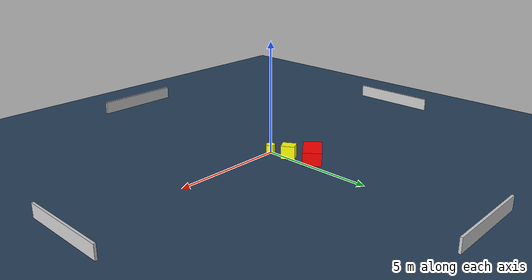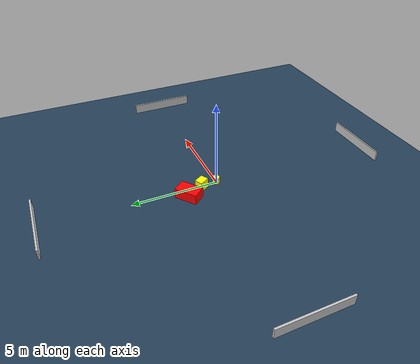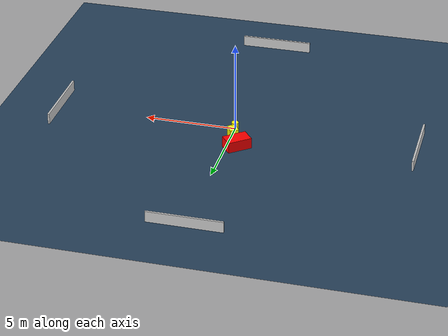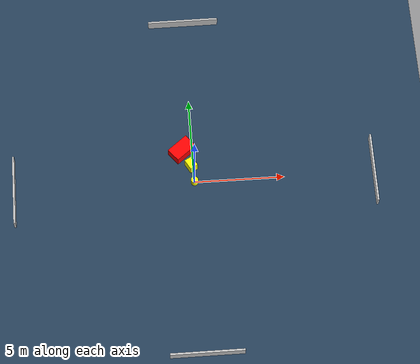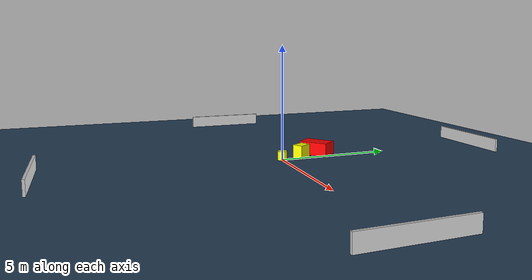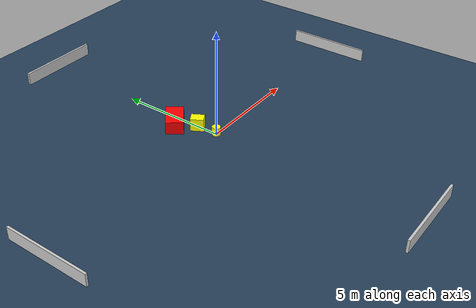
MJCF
<?xml version="1.0" ?>
<mujoco model="generated_environment">
  <option timestep="0.01" integrator="RK4" cone="elliptic"/>
  <default>
    <geom density="1"/>
  </default>
  <asset>
    <texture builtin="gradient" height="3072" name="skybox" rgb1="0.3 0.5 0.7" rgb2="0 0 0" type="skybox" width="512"/>
    <texture builtin="checker" height="300" name="groundplane" rgb1="0.2 0.3 0.4" rgb2="0.1 0.2 0.3" type="2d" width="300"/>
    <material name="groundplane" reflectance="0.2" texrepeat="5 5" texture="groundplane"/>
  </asset>
  <worldbody>
    <light dir="0 0 -1" directional="true" pos="0 0 1.5"/>
    <geom condim="3" friction="0.5 0.005 0.001" material="groundplane" name="floor" pos="0 0 0" size="0 0 0.05" type="plane"/>
    <body name="walls">
      <geom name="wall_1" condim="4" pos="-10.0 0.0 0.3" rgba="0.800000011920929 0.800000011920929 0.800000011920929 1.0" size="0.05 2.0 0.3" type="box"/>
      <geom name="wall_2" condim="4" pos="10.0 0.0 0.3" rgba="0.800000011920929 0.800000011920929 0.800000011920929 1.0" size="0.05 2.0 0.3" type="box"/>
      <geom name="wall_3" condim="4" pos="0.0 -10.0 0.3" rgba="0.800000011920929 0.800000011920929 0.800000011920929 1.0" size="2.0 0.05 0.3" type="box"/>
      <geom name="wall_4" condim="4" pos="0.0 10.0 0.3" rgba="0.800000011920929 0.800000011920929 0.800000011920929 1.0" size="2.0 0.05 0.3" type="box"/>
    </body>
    <body name="robot">
      <joint name="joint_x" type="slide" pos="0 0 0" axis="1 0 0"/>
      <joint name="joint_y" type="slide" pos="0 0 0" axis="0 1 0"/>
      <geom name="robot" type="cylinder" pos="0.0 0.0 0.2" size="0.2 0.2 0.0" mass="5.0" friction="1.0 0.005 0.0001" condim="4" rgba="1.0 1.0 0.0 1.0"/>
    </body>
    <body name="obstacle_1_movable">
      <geom name="obstacle_1_movable" condim="4" pos="-0.12365007790635947 0.957817613210559 0.3" euler="0 0 209.75473918421733" friction="0.0 0.005 0.001" rgba="1.0 1.0 0.0 1.0" size="0.23588656837147193 0.30453567709768037 0.3" type="box" mass="0.1"/>
      <joint type="free"/>
    </body>
    <body name="obstacle_2_static">
      <geom name="obstacle_2_static" condim="4" pos="-0.5785883406614221 1.9036285024061466 0.3" euler="0 0 308.60794781620774" friction="0.0 0.005 0.001" rgba="1.0 0.0 0.0 1.0" size="0.4114619187159082 0.6680827701443652 0.3" type="box"/>
    </body>
  </worldbody>
  <actuator>
    <motor name="actuator_x" joint="joint_x" gear="1" ctrlrange="-1 1"/>
    <motor name="actuator_y" joint="joint_y" gear="1" ctrlrange="-1 1"/>
  </actuator>
</mujoco>
